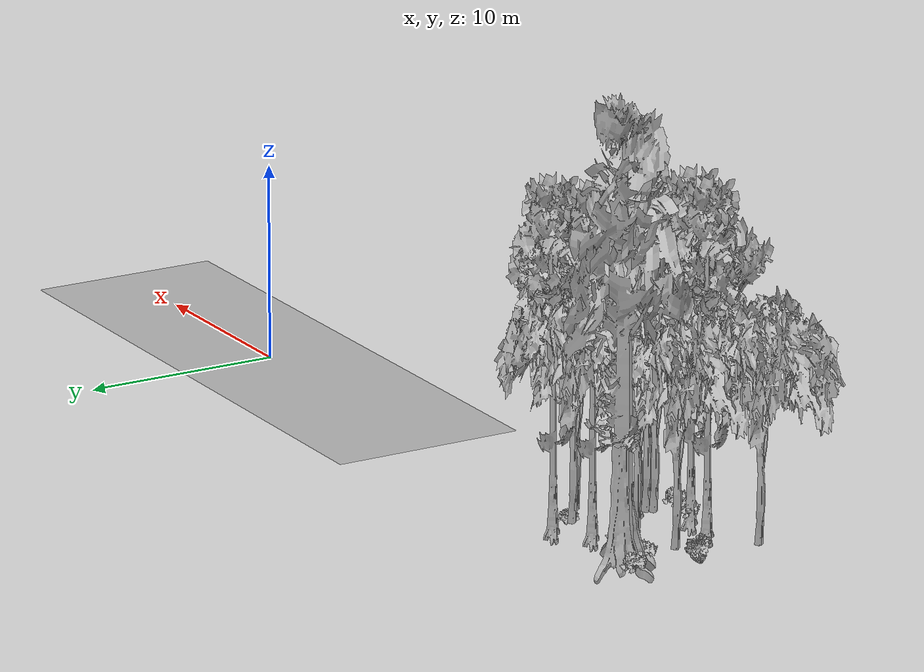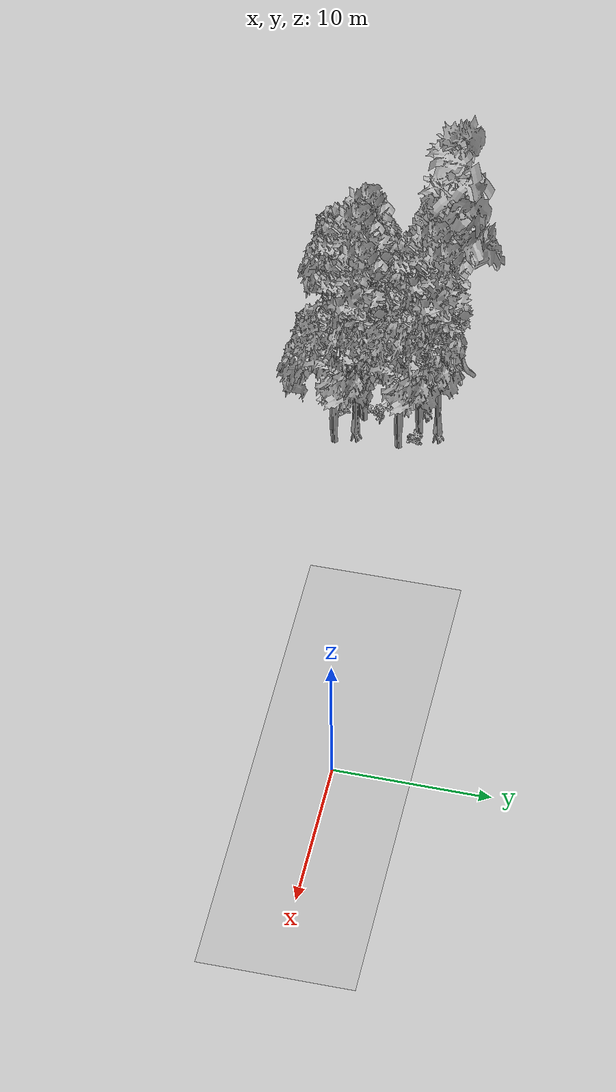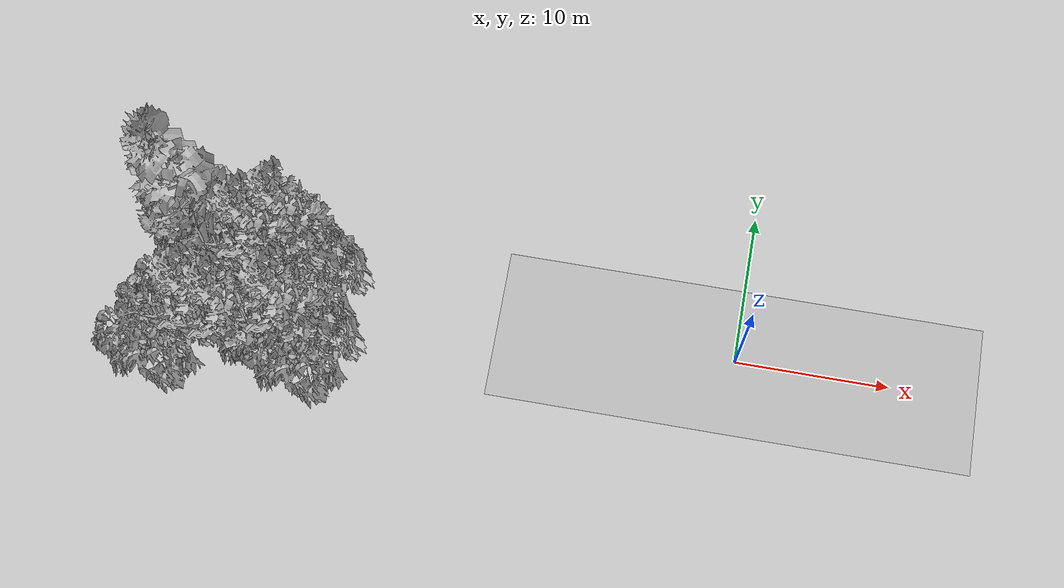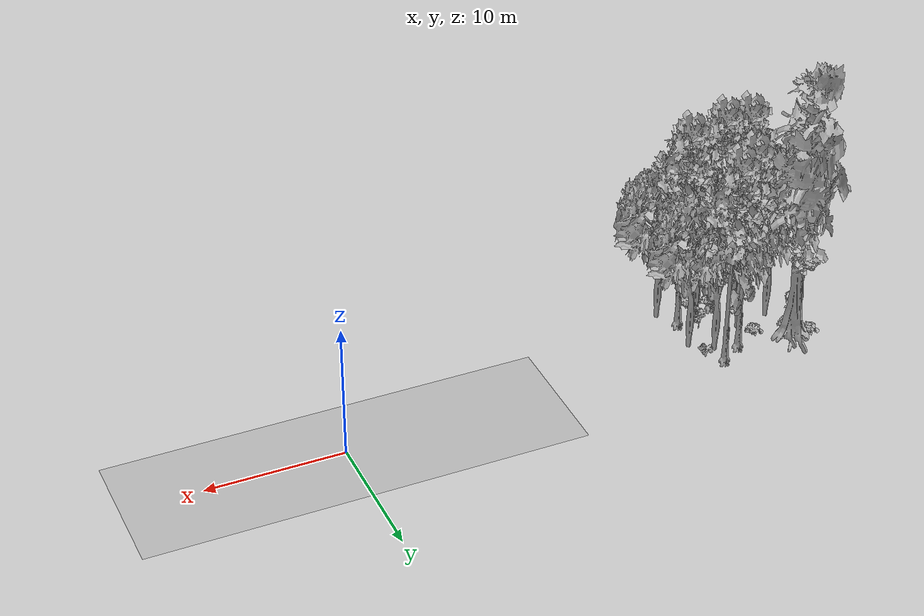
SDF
<sdf version="1.7">
 <world name="default">
  <model name="ground_plane">
   <static>1</static>
   <link name="link">
    <collision name="collision">
     <geometry><plane><normal>0 0 1</normal><size>100 100</size></plane></geometry>
     <surface><contact><ode><min_depth>0.01</min_depth><max_vel>0</max_vel></ode></contact></surface>
    </collision>
    <visual name="grass">
     <cast_shadows>0</cast_shadows>
     <geometry>
      <mesh>
       <scale>0.5814285714285714 0.18142857142857144 0.1</scale>
       <uri>file://grass_plane/meshes/grass_plane.dae</uri>
      </mesh>
     </geometry>
    </visual>
   </link>
  </model>
  <model name="Tree 21">
   <static>1</static>
   <pose>-30.586113909239426 -5.416747287791264 0 1.57079 -0 0</pose>
   <link name="link">
    <collision name="collision">
     <geometry><mesh><scale>3.5 5 3.5</scale><uri>model://tree_9/meshes/tree_9.obj</uri></mesh></geometry>
    </collision>
    <visual name="visual">
     <geometry><mesh><scale>3.5 5 3.5</scale><uri>model://tree_9/meshes/tree_9.obj</uri></mesh></geometry>
    </visual>
   </link>
  </model>
  <model name="Tree 63">
   <static>1</static>
   <pose>-34.0760261336106 0.49403077076489765 0 1.57079 -0 0</pose>
   <link name="link">
    <collision name="collision">
     <geometry><mesh><scale>3.5 5 3.5</scale><uri>model://tree_4/meshes/tree_4.obj</uri></mesh></geometry>
    </collision>
    <visual name="visual">
     <geometry><mesh><scale>3.5 5 3.5</scale><uri>model://tree_4/meshes/tree_4.obj</uri></mesh></geometry>
    </visual>
   </link>
  </model>
  <model name="Tree 99">
   <static>1</static>
   <pose>-31.09106433889609 -2.1913732734269633 0 1.57079 -0 0</pose>
   <link name="link">
    <collision name="collision">
     <geometry><mesh><scale>3.5 5 3.5</scale><uri>model://tree_2/meshes/tree_2.obj</uri></mesh></geometry>
    </collision>
    <visual name="visual">
     <geometry><mesh><scale>3.5 5 3.5</scale><uri>model://tree_2/meshes/tree_2.obj</uri></mesh></geometry>
    </visual>
   </link>
  </model>
  <model name="Tree 162">
   <static>1</static>
   <pose>-26.79300131287816 -1.5318523945461315 0 1.57079 -0 0</pose>
   <link name="link">
    <collision name="collision">
     <geometry><mesh><scale>3.5 5 3.5</scale><uri>model://tree_2/meshes/tree_2.obj</uri></mesh></geometry>
    </collision>
    <visual name="visual">
     <geometry><mesh><scale>3.5 5 3.5</scale><uri>model://tree_2/meshes/tree_2.obj</uri></mesh></geometry>
    </visual>
   </link>
  </model>
  <model name="Tree 186">
   <static>1</static>
   <pose>-28.290496169212965 -0.443006450660107 0 1.57079 -0 0</pose>
   <link name="link">
    <collision name="collision">
     <geometry><mesh><scale>3.5 5 3.5</scale><uri>model://tree_2/meshes/tree_2.obj</uri></mesh></geometry>
    </collision>
    <visual name="visual">
     <geometry><mesh><scale>3.5 5 3.5</scale><uri>model://tree_2/meshes/tree_2.obj</uri></mesh></geometry>
    </visual>
   </link>
  </model>
  <model name="Tree 245">
   <static>1</static>
   <pose>-28.904552084213503 -4.523169705678615 0 1.57079 -0 0</pose>
   <link name="link">
    <collision name="collision">
     <geometry><mesh><scale>3.5 5 3.5</scale><uri>model://tree_2/meshes/tree_2.obj</uri></mesh></geometry>
    </collision>
    <visual name="visual">
     <geometry><mesh><scale>3.5 5 3.5</scale><uri>model://tree_2/meshes/tree_2.obj</uri></mesh></geometry>
    </visual>
   </link>
  </model>
  <model name="Tree 280">
   <static>1</static>
   <pose>-33.680490794120054 -2.7202527711901663 0 1.57079 -0 0</pose>
   <link name="link">
    <collision name="collision">
     <geometry><mesh><scale>3.5 5 3.5</scale><uri>model://tree_2/meshes/tree_2.obj</uri></mesh></geometry>
    </collision>
    <visual name="visual">
     <geometry><mesh><scale>3.5 5 3.5</scale><uri>model://tree_2/meshes/tree_2.obj</uri></mesh></geometry>
    </visual>
   </link>
  </model>
  <model name="Tree 286">
   <static>1</static>
   <pose>-26.3854574394896 -5.7246758559539614 0 1.57079 -0 0</pose>
   <link name="link">
    <collision name="collision">
     <geometry><mesh><scale>3.5 5 3.5</scale><uri>model://tree_2/meshes/tree_2.obj</uri></mesh></geometry>
    </collision>
    <visual name="visual">
     <geometry><mesh><scale>3.5 5 3.5</scale><uri>model://tree_2/meshes/tree_2.obj</uri></mesh></geometry>
    </visual>
   </link>
  </model>
  <model name="Tree 289">
   <static>1</static>
   <pose>-28.39997656922894 0.7591259562623698 0 1.57079 -0 0</pose>
   <link name="link">
    <collision name="collision">
     <geometry><mesh><scale>3.5 5 3.5</scale><uri>model://tree_9/meshes/tree_9.obj</uri></mesh></geometry>
    </collision>
    <visual name="visual">
     <geometry><mesh><scale>3.5 5 3.5</scale><uri>model://tree_9/meshes/tree_9.obj</uri></mesh></geometry>
    </visual>
   </link>
  </model>
  <model name="Tree 293">
   <static>1</static>
   <pose>-28.669837799249283 -4.236556950322431 0 1.57079 -0 0</pose>
   <link name="link">
    <collision name="collision">
     <geometry><mesh><scale>3.5 5 3.5</scale><uri>model://tree_2/meshes/tree_2.obj</uri></mesh></geometry>
    </collision>
    <visual name="visual">
     <geometry><mesh><scale>3.5 5 3.5</scale><uri>model://tree_2/meshes/tree_2.obj</uri></mesh></geometry>
    </visual>
   </link>
  </model>
  <model name="Tree 312">
   <static>1</static>
   <pose>-27.40186954221249 -4.518707462203215 0 1.57079 -0 0</pose>
   <link name="link">
    <collision name="collision">
     <geometry><mesh><scale>3.5 5 3.5</scale><uri>model://tree_9/meshes/tree_9.obj</uri></mesh></geometry>
    </collision>
    <visual name="visual">
     <geometry><mesh><scale>3.5 5 3.5</scale><uri>model://tree_9/meshes/tree_9.obj</uri></mesh></geometry>
    </visual>
   </link>
  </model>
  <model name="Tree 363">
   <static>1</static>
   <pose>-32.37969981823022 -5.17122594553326 0 1.57079 -0 0</pose>
   <link name="link">
    <collision name="collision">
     <geometry><mesh><scale>3.5 5 3.5</scale><uri>model://tree_9/meshes/tree_9.obj</uri></mesh></geometry>
    </collision>
    <visual name="visual">
     <geometry><mesh><scale>3.5 5 3.5</scale><uri>model://tree_9/meshes/tree_9.obj</uri></mesh></geometry>
    </visual>
   </link>
  </model>
  <model name="Tree 371">
   <static>1</static>
   <pose>-35.142551510879294 -6.341018703089615 0 1.57079 -0 0</pose>
   <link name="link">
    <collision name="collision">
     <geometry><mesh><scale>3.5 5 3.5</scale><uri>model://tree_2/meshes/tree_2.obj</uri></mesh></geometry>
    </collision>
    <visual name="visual">
     <geometry><mesh><scale>3.5 5 3.5</scale><uri>model://tree_2/meshes/tree_2.obj</uri></mesh></geometry>
    </visual>
   </link>
  </model>
  <model name="Tree 425">
   <static>1</static>
   <pose>-30.074595743482 -0.3564244087739592 0 1.57079 -0 0</pose>
   <link name="link">
    <collision name="collision">
     <geometry><mesh><scale>3.5 5 3.5</scale><uri>model://tree_9/meshes/tree_9.obj</uri></mesh></geometry>
    </collision>
    <visual name="visual">
     <geometry><mesh><scale>3.5 5 3.5</scale><uri>model://tree_9/meshes/tree_9.obj</uri></mesh></geometry>
    </visual>
   </link>
  </model>
  <model name="Bush 10">
   <static>1</static>
   <pose>-34.03637674478708 -0.6335159478051828 0 1.57079 -0 0</pose>
   <link name="link">
    <collision name="collision">
     <geometry><mesh><scale>2 2 2</scale><uri>model://bush_3/meshes/bush_3.obj</uri></mesh></geometry>
     <surface><contact><collide_without_contact>false</collide_without_contact></contact></surface>
    </collision>
    <visual name="visual">
     <geometry><mesh><scale>2 2 2</scale><uri>model://bush_3/meshes/bush_3.obj</uri></mesh></geometry>
    </visual>
   </link>
  </model>
  <model name="Bush 14">
   <static>1</static>
   <pose>-35.74931796482632 -2.6537490233001613 0 1.57079 -0 0</pose>
   <link name="link">
    <collision name="collision">
     <geometry><mesh><scale>2 2 2</scale><uri>model://bush_4/meshes/bush_4.obj</uri></mesh></geometry>
     <surface><contact><collide_without_contact>false</collide_without_contact></contact></surface>
    </collision>
    <visual name="visual">
     <geometry><mesh><scale>2 2 2</scale><uri>model://bush_4/meshes/bush_4.obj</uri></mesh></geometry>
    </visual>
   </link>
  </model>
  <model name="Bush 22">
   <static>1</static>
   <pose>-35.235150721095884 0.6791230500148231 0 1.57079 -0 0</pose>
   <link name="link">
    <collision name="collision">
     <geometry><mesh><scale>2 2 2</scale><uri>model://bush_3/meshes/bush_3.obj</uri></mesh></geometry>
     <surface><contact><collide_without_contact>false</collide_without_contact></contact></surface>
    </collision>
    <visual name="visual">
     <geometry><mesh><scale>2 2 2</scale><uri>model://bush_3/meshes/bush_3.obj</uri></mesh></geometry>
    </visual>
   </link>
  </model>
  <model name="Bush 93">
   <static>1</static>
   <pose>-30.25732211554819 -5.359694299634608 0 1.57079 -0 0</pose>
   <link name="link">
    <collision name="collision">
     <geometry><mesh><scale>2 2 2</scale><uri>model://bush_3/meshes/bush_3.obj</uri></mesh></geometry>
     <surface><contact><collide_without_contact>false</collide_without_contact></contact></surface>
    </collision>
    <visual name="visual">
     <geometry><mesh><scale>2 2 2</scale><uri>model://bush_3/meshes/bush_3.obj</uri></mesh></geometry>
    </visual>
   </link>
  </model>
  <model name="Bush 116">
   <static>1</static>
   <pose>-28.369985727841026 -3.119140206191913 0 1.57079 -0 0</pose>
   <link name="link">
    <collision name="collision">
     <geometry><mesh><scale>2 2 2</scale><uri>model://bush_5/meshes/bush_5.obj</uri></mesh></geometry>
     <surface><contact><collide_without_contact>false</collide_without_contact></contact></surface>
    </collision>
    <visual name="visual">
     <geometry><mesh><scale>2 2 2</scale><uri>model://bush_5/meshes/bush_5.obj</uri></mesh></geometry>
    </visual>
   </link>
  </model>
  <model name="Bush 127">
   <static>1</static>
   <pose>-28.71220432972499 -5.706359726127866 0 1.57079 -0 0</pose>
   <link name="link">
    <collision name="collision">
     <geometry><mesh><scale>2 2 2</scale><uri>model://bush_3/meshes/bush_3.obj</uri></mesh></geometry>
     <surface><contact><collide_without_contact>false</collide_without_contact></contact></surface>
    </collision>
    <visual name="visual">
     <geometry><mesh><scale>2 2 2</scale><uri>model://bush_3/meshes/bush_3.obj</uri></mesh></geometry>
    </visual>
   </link>
  </model>
  <model name="Bush 200">
   <static>1</static>
   <pose>-31.51421414309715 -0.847349311063434 0 1.57079 -0 0</pose>
   <link name="link">
    <collision name="collision">
     <geometry><mesh><scale>2 2 2</scale><uri>model://bush_3/meshes/bush_3.obj</uri></mesh></geometry>
     <surface><contact><collide_without_contact>false</collide_without_contact></contact></surface>
    </collision>
    <visual name="visual">
     <geometry><mesh><scale>2 2 2</scale><uri>model://bush_3/meshes/bush_3.obj</uri></mesh></geometry>
    </visual>
   </link>
  </model>
  <model name="Bush 324">
   <static>1</static>
   <pose>-27.652566567104945 -0.6108158681833782 0 1.57079 -0 0</pose>
   <link name="link">
    <collision name="collision">
     <geometry><mesh><scale>2 2 2</scale><uri>model://bush_2/meshes/bush_2.obj</uri></mesh></geometry>
     <surface><contact><collide_without_contact>false</collide_without_contact></contact></surface>
    </collision>
    <visual name="visual">
     <geometry><mesh><scale>2 2 2</scale><uri>model://bush_2/meshes/bush_2.obj</uri></mesh></geometry>
    </visual>
   </link>
  </model>
 </world>
</sdf>
